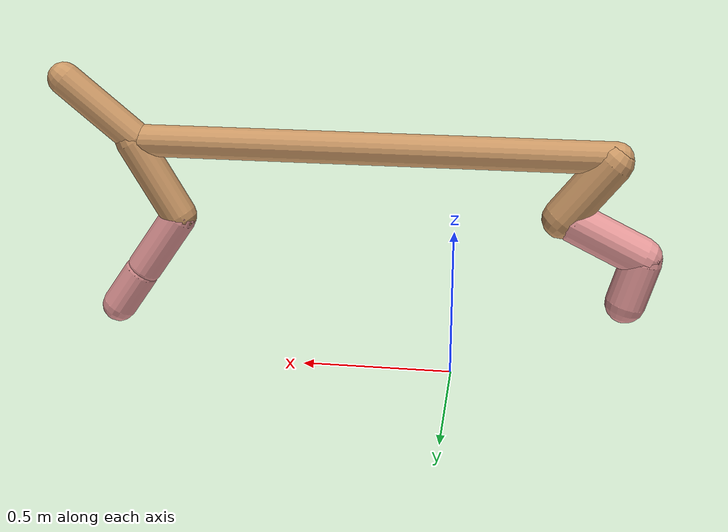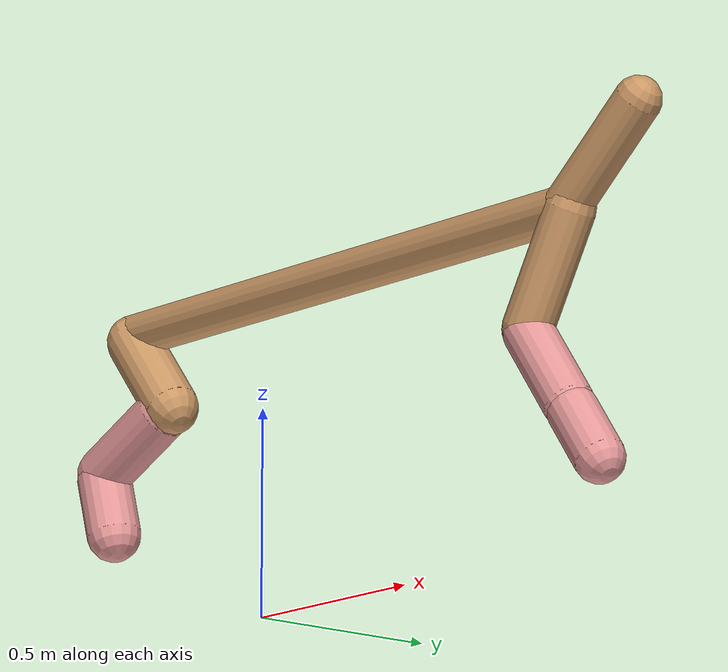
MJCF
<mujoco model="cheetah">
  <compiler angle="radian" coordinate="local" inertiafromgeom="true" settotalmass="14" />
  <default>
    <joint armature=".1" damping=".01" limited="true" solimplimit="0 .8 .03" solreflimit=".02 1" stiffness="8" />
    <geom conaffinity="0" condim="3" contype="1" friction="0.8 .1 .1" rgba="0.8 0.6 .4 1" solimp="0.0 0.8 0.01" solref="0.02 1" />
    <motor ctrllimited="true" ctrlrange="-1 1" />
  </default>
  <size nstack="300000" nuser_geom="1" />
  <option gravity="0 0 -9.81" timestep="0.01" />
  <worldbody>
    <body name="torso" pos="0.0 0.0 0.7694940705406597">
      <joint armature="0" axis="1 0 0" damping="0" limited="false" name="ignorex" pos="0 0 0" stiffness="0" type="slide" />
      <joint armature="0" axis="0 0 1" damping="0" limited="false" name="ignorez" pos="0 0 0" stiffness="0" type="slide" />
      <joint armature="0" axis="0 1 0" damping="0" limited="false" name="ignorey" pos="0 0 0" stiffness="0" type="hinge" />
      <geom fromto="-0.5 0.0 0.0 1.0595095608401435 0.0 0.0" name="torso" size="0.052313272629117204" type="capsule" />
      <geom axisangle="0 1 0 .87" name="head" pos="1.1595095608401436 0.0 0.1" size="0.05473687827766804 0.15" type="capsule" />

      <body name="bthigh" pos="-.5 0 0">
        <joint axis="0 1 0" damping="6" name="bthigh" pos="0 0 0" range="-.52 1.05" stiffness="240" type="hinge" />
        <geom axisangle="0 1 0 -3.8" name="bthigh" pos="0.08482870436285178 0.0 -0.1102773156717073" size="0.0661920415726452 0.12011722506585659" type="capsule" />
        <body name="bshin" pos="0.12965740872570353 0.0 -0.2105546313434146">
          <joint axis="0 1 0" damping="4.5" name="bshin" pos="0 0 0" range="-.785 .785" stiffness="180" type="hinge" />
          <geom axisangle="0 1 0 -2.03" name="bshin" pos="-0.11697672708072863 0.0 -0.05848836354036432" rgba="0.9 0.6 0.6 1" size="0.0661920415726452 0.12425919834398957" type="capsule" />
          <body name="bfoot" pos="-0.23395345416145727 0.0 -0.11697672708072863">
            <joint axis="0 1 0" damping="3" name="bfoot" pos="0 0 0" range="-.4 .785" stiffness="120" type="hinge" />
            <geom axisangle="0 1 0 -.27" name="bfoot" pos="0.0252338067459282 0.0 -0.08158930847850118" rgba="0.9 0.6 0.6 1" size="0.0661920415726452 0.07786909762890014" type="capsule" />
            <inertial mass="10" />
          </body>
        </body>
      </body>
      <body name="fthigh" pos="1.0595095608401435 0.0 0.0">
        <joint axis="0 1 0" damping="4.5" name="fthigh" pos="0 0 0" range="-1.5 0.8" stiffness="180" type="hinge" />
        <geom axisangle="0 1 0 .52" name="fthigh" pos="-0.07487147956341528 0.0 -0.1283511078229976" size="0.058892584903584524 0.1426681081400709" type="capsule" />
        <body name="fshin" pos="-0.14974295912683055 0.0 -0.2567022156459952">
          <joint axis="0 1 0" damping="3" name="fshin" pos="0 0 0" range="-1.2 1.1" stiffness="120" type="hinge" />
          <geom axisangle="0 1 0 -.6" name="fshin" pos="0.06951144447288021 0.0 -0.09624661542398798" rgba="0.9 0.6 0.6 1" size="0.058892584903584524 0.11370540949509407" type="capsule" />
          <body name="ffoot" pos="0.13902288894576043 0.0 -0.19249323084797595">
            <joint axis="0 1 0" damping="1.5" name="ffoot" pos="0 0 0" range="-3.1 -0.3" stiffness="60" type="hinge" />
            <geom axisangle="0 1 0 -.6" name="ffoot" pos="0.04775163308967534 0.0 -0.07428031813949498" rgba="0.9 0.6 0.6 1" size="0.058892584903584524 0.07508847796845836" type="capsule" />
            <inertial mass="10" />
          </body>
        </body>
      </body>
    </body>
  </worldbody>
  <actuator>
    <motor gear="120" joint="bthigh" name="bthigh" />
    <motor gear="90" joint="bshin" name="bshin" />
    <motor gear="60" joint="bfoot" name="bfoot" />
    <motor gear="120" joint="fthigh" name="fthigh" />
    <motor gear="60" joint="fshin" name="fshin" />
    <motor gear="30" joint="ffoot" name="ffoot" />
  </actuator>
</mujoco>
